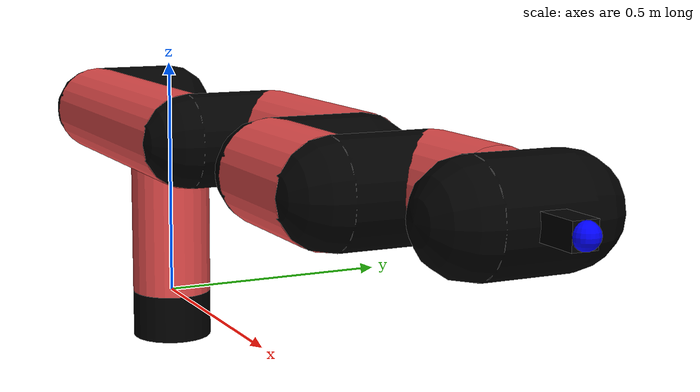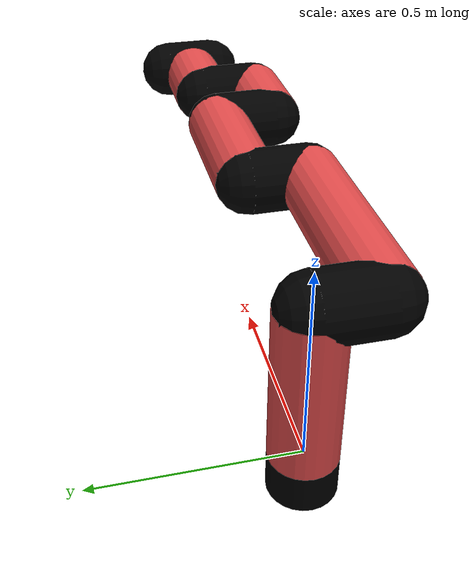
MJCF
<mujoco model="manipulator">
		<compiler angle="degree" coordinate="local" inertiafromgeom="auto" meshdir="meshes/"/>
		<option gravity="0 0 0" integrator="RK4" iterations="30" timestep="0.01"/>

		<default>
		<joint armature="1" limited="true" stiffness="10" damping="15" frictionloss="5.0"/>
		<geom conaffinity="1" condim="3" contype="1" friction=".5 .1 .1" margin="0.002"/>
		<motor ctrllimited="true"/>
		<position ctrllimited="true"/>
		</default>

		<asset>
		<texture builtin="gradient" height="100" rgb1="1.0 1.0 1.0" rgb2="1.0 1.0 1.0" type="skybox" width="100"/>
		<texture builtin="flat" height="32" name="arm_tex" rgb1="0.9 0.3 0.3" type="2d" width="32"/>
		<texture builtin="flat" height="32" name="gripper_tex" rgb1="0.0 0.0 0.0" type="cube" width="32"/>

		<material name="arm_mat" shininess="0.1" specular="0.1" texture="arm_tex"/>
		<material name="gripper_mat" shininess="1" specular="1" texture="gripper_tex"/>
		</asset>

		<worldbody>
		<light cutoff="45" diffuse=".8 .8 .8" dir="0 0.16 -1" directional="false" name="light" pos="0 -2.0 8.0" specular="0.3 0.3 0.3"/>

		<body name="base_link" pos="0 0 -0.1">
		<geom fromto="0 0 0 0 0 0.1" material="arm_mat" name="base_link" rgba="0.0 0.0 0.0 1" size="0.085" type="cylinder"/>
		</body>

		<body name="l1" pos="0 0 0">
<geom fromto="0 0 0 0 0 0.41" material="arm_mat" name="l1" rgba="0.9 0.3 0.3 1" size="0.085" type="cylinder"/>
<geom fromto="0 0 0.41 0 -0.16 0.41" material="arm_mat" name="l1_ex" rgba="0.0 0.0 0.0 1" size="0.085" type="capsule"/>
<joint axis="0 0 1" name="j1" pos="0 0 0" range="-90 90" damping="16.14" frictionloss="13.19"/>

<body name="l2" pos="0 -0.16 0.41">
<geom fromto="0 0 0 0.54 0 0" material="arm_mat" name="l2" rgba="0.9 0.3 0.3 1" size="0.085" type="cylinder"/>
<geom fromto="0.54 0 0 0.54 0.16 0" material="arm_mat" name="l2_ex" rgba="0.0 0.0 0.0 1" size="0.085" type="capsule"/>
<joint axis="0.0 1.0 0.0" name="j2" pos="0 0 0" range="-90 60" damping="20.15" frictionloss="13.68"/>

<body name="l3" pos="0.54 0.16 0">
<geom fromto="0 0 0 0.36 0 0" material="arm_mat" name="l3" rgba="0.9 0.3 0.3 1" size="0.085" type="cylinder"/>
<geom fromto="0.36 0 0 0.36 -0.16 0" material="arm_mat" name="l3_ex" rgba="0.0 0.0 0.0 1" size="0.085" type="capsule"/>
<joint axis="0.0 1.0 0.0" name="j3" pos="0 0 0" range="-30 60" damping="30.27" frictionloss="8.78"/>

<body name="l4" pos="0.36 -0.16 0">
<geom fromto="0 0 0 0.21 0 0" material="arm_mat" name="l4" rgba="0.9 0.3 0.3 1" size="0.085" type="cylinder"/>
<geom fromto="0.21 0 0 0.21 0.16 0" material="arm_mat" name="l4_ex" rgba="0.0 0.0 0.0 1" size="0.085" type="capsule"/>
<joint axis="0.0 1.0 0.0" name="j4" pos="0 0 0" range="-30 60" damping="35.22" frictionloss="9.33"/>

<body name="l5" pos="0.21 0.16 0">
<geom fromto="0 0 0 0.18 0 0" material="arm_mat" name="l5" rgba="0.9 0.3 0.3 1" size="0.085" type="cylinder"/>
<joint axis="0.0 1.0 0.0" name="j5" pos="0 0 0" range="-30 60" damping="34.98" frictionloss="7.96"/>

<body name="gripper" pos="0.18 0 0">
<geom fromto="0.05 -0.07 0 0.05 0.07 0" material="gripper_mat" name="gripper" rgba="0.0 0.0 0.0 1" size="0.085" type="capsule"/><joint axis="1 0 0" name="j6" pos="0 0 0" range="-90 90" damping="15" frictionloss="5.0"/><body name="finger" pos="0.1 0 0">
<geom fromto="0 0.0 0 0.1 0.0 0" material="gripper_mat" name="finger" rgba="0.0 0.0 0.0 1" size="0.020 0.06 0.06" type="box"/>
</body>
<site name="current" pos="0.2 0. 0.0" rgba="0. 0. 1.0 1" size="0.02" type="sphere"/>
</body>
</body>
</body>
</body>
</body>
</body>
</worldbody>
<actuator>
<motor ctrllimited="true" ctrlrange="-1.0 1.0" joint="j1" gear="116.98"/>
<motor ctrllimited="true" ctrlrange="-1.0 1.0" joint="j2" gear="117.9"/>
<motor ctrllimited="true" ctrlrange="-1.0 1.0" joint="j3" gear="67.75"/>
<motor ctrllimited="true" ctrlrange="-1.0 1.0" joint="j4" gear="55.53"/>
<motor ctrllimited="true" ctrlrange="-1.0 1.0" joint="j5" gear="79.98"/>
<motor ctrllimited="true" ctrlrange="-1.0 1.0" joint="j6" gear="80"/>
</actuator>
</mujoco>
